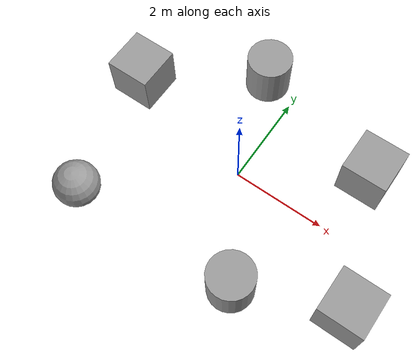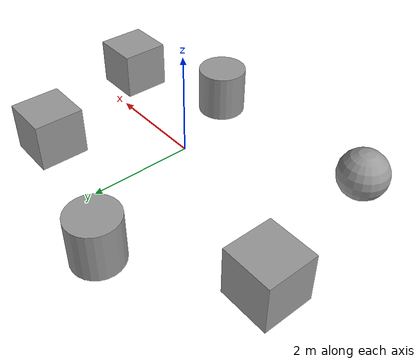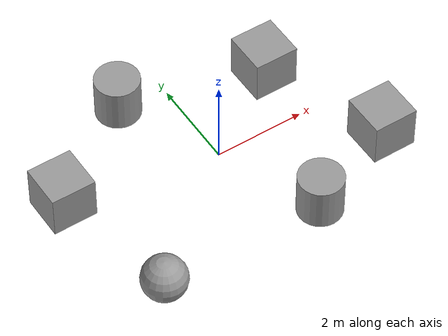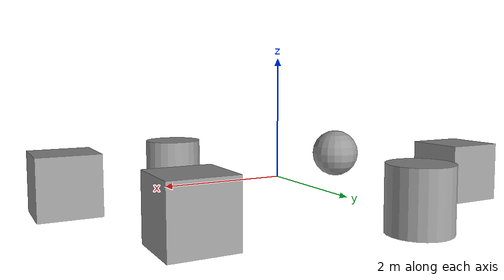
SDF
<?xml version='1.0'?>
<sdf version='1.7'>
  <model name='model'>
    <link name='link_0'>
      <inertial>
        <mass>1</mass>
        <inertia>
          <ixx>0.145833</ixx>
          <ixy>0</ixy>
          <ixz>0</ixz>
          <iyy>0.145833</iyy>
          <iyz>0</iyz>
          <izz>0.125</izz>
        </inertia>
      </inertial>
      <pose>-0.878702 2.53613 0 0 -0 0</pose>
      <visual name='visual'>
        <pose>0 0 0 0 -0 0</pose>
        <geometry>
          <cylinder>
            <radius>0.5</radius>
            <length>1</length>
          </cylinder>
        </geometry>
        <material>
          <lighting>1</lighting>
          <script>
            <uri>file://media/materials/scripts/gazebo.material</uri>
            <name>Gazebo/Grey</name>
          </script>
          <shader type='pixel'/>
        </material>
        <transparency>0</transparency>
        <cast_shadows>1</cast_shadows>
      </visual>
      <collision name='collision'>
        <laser_retro>0</laser_retro>
        <max_contacts>10</max_contacts>
        <pose>0 0 0 0 -0 0</pose>
        <geometry>
          <cylinder>
            <radius>0.5</radius>
            <length>1</length>
          </cylinder>
        </geometry>
        <surface>
          <friction>
            <ode>
              <mu>1</mu>
              <mu2>1</mu2>
              <fdir1>0 0 0</fdir1>
              <slip1>0</slip1>
              <slip2>0</slip2>
            </ode>
            <torsional>
              <coefficient>1</coefficient>
              <patch_radius>0</patch_radius>
              <surface_radius>0</surface_radius>
              <use_patch_radius>1</use_patch_radius>
              <ode>
                <slip>0</slip>
              </ode>
            </torsional>
          </friction>
          <bounce>
            <restitution_coefficient>0</restitution_coefficient>
            <threshold>1e+06</threshold>
          </bounce>
          <contact>
            <collide_without_contact>0</collide_without_contact>
            <collide_without_contact_bitmask>1</collide_without_contact_bitmask>
            <collide_bitmask>1</collide_bitmask>
            <ode>
              <soft_cfm>0</soft_cfm>
              <soft_erp>0.2</soft_erp>
              <kp>1e+13</kp>
              <kd>1</kd>
              <max_vel>0.01</max_vel>
              <min_depth>0</min_depth>
            </ode>
            <bullet>
              <split_impulse>1</split_impulse>
              <split_impulse_penetration_threshold>-0.01</split_impulse_penetration_threshold>
              <soft_cfm>0</soft_cfm>
              <soft_erp>0.2</soft_erp>
              <kp>1e+13</kp>
              <kd>1</kd>
            </bullet>
          </contact>
        </surface>
      </collision>
    </link>
    <link name='link_1'>
      <inertial>
        <mass>1</mass>
        <inertia>
          <ixx>0.166667</ixx>
          <ixy>0</ixy>
          <ixz>0</ixz>
          <iyy>0.166667</iyy>
          <iyz>0</iyz>
          <izz>0.166667</izz>
        </inertia>
      </inertial>
      <pose>3.31203 -1.09764 0 0 -0 0</pose>
      <visual name='visual'>
        <pose>0 0 0 0 -0 0</pose>
        <geometry>
          <box>
            <size>1 1 1</size>
          </box>
        </geometry>
        <material>
          <lighting>1</lighting>
          <script>
            <uri>file://media/materials/scripts/gazebo.material</uri>
            <name>Gazebo/Grey</name>
          </script>
          <shader type='pixel'/>
        </material>
        <transparency>0</transparency>
        <cast_shadows>1</cast_shadows>
      </visual>
      <collision name='collision'>
        <laser_retro>0</laser_retro>
        <max_contacts>10</max_contacts>
        <pose>0 0 0 0 -0 0</pose>
        <geometry>
          <box>
            <size>1 1 1</size>
          </box>
        </geometry>
        <surface>
          <friction>
            <ode>
              <mu>1</mu>
              <mu2>1</mu2>
              <fdir1>0 0 0</fdir1>
              <slip1>0</slip1>
              <slip2>0</slip2>
            </ode>
            <torsional>
              <coefficient>1</coefficient>
              <patch_radius>0</patch_radius>
              <surface_radius>0</surface_radius>
              <use_patch_radius>1</use_patch_radius>
              <ode>
                <slip>0</slip>
              </ode>
            </torsional>
          </friction>
          <bounce>
            <restitution_coefficient>0</restitution_coefficient>
            <threshold>1e+06</threshold>
          </bounce>
          <contact>
            <collide_without_contact>0</collide_without_contact>
            <collide_without_contact_bitmask>1</collide_without_contact_bitmask>
            <collide_bitmask>1</collide_bitmask>
            <ode>
              <soft_cfm>0</soft_cfm>
              <soft_erp>0.2</soft_erp>
              <kp>1e+13</kp>
              <kd>1</kd>
              <max_vel>0.01</max_vel>
              <min_depth>0</min_depth>
            </ode>
            <bullet>
              <split_impulse>1</split_impulse>
              <split_impulse_penetration_threshold>-0.01</split_impulse_penetration_threshold>
              <soft_cfm>0</soft_cfm>
              <soft_erp>0.2</soft_erp>
              <kp>1e+13</kp>
              <kd>1</kd>
            </bullet>
          </contact>
        </surface>
      </collision>
    </link>
    <link name='link_2'>
      <inertial>
        <mass>1</mass>
        <inertia>
          <ixx>0.166667</ixx>
          <ixy>0</ixy>
          <ixz>0</ixz>
          <iyy>0.166667</iyy>
          <iyz>0</iyz>
          <izz>0.166667</izz>
        </inertia>
      </inertial>
      <pose>2.22845 1.67856 0 0 -0 0</pose>
      <visual name='visual'>
        <pose>0 0 0 0 -0 0</pose>
        <geometry>
          <box>
            <size>1 1 1</size>
          </box>
        </geometry>
        <material>
          <lighting>1</lighting>
          <script>
            <uri>file://media/materials/scripts/gazebo.material</uri>
            <name>Gazebo/Grey</name>
          </script>
          <shader type='pixel'/>
        </material>
        <transparency>0</transparency>
        <cast_shadows>1</cast_shadows>
      </visual>
      <collision name='collision'>
        <laser_retro>0</laser_retro>
        <max_contacts>10</max_contacts>
        <pose>0 0 0 0 -0 0</pose>
        <geometry>
          <box>
            <size>1 1 1</size>
          </box>
        </geometry>
        <surface>
          <friction>
            <ode>
              <mu>1</mu>
              <mu2>1</mu2>
              <fdir1>0 0 0</fdir1>
              <slip1>0</slip1>
              <slip2>0</slip2>
            </ode>
            <torsional>
              <coefficient>1</coefficient>
              <patch_radius>0</patch_radius>
              <surface_radius>0</surface_radius>
              <use_patch_radius>1</use_patch_radius>
              <ode>
                <slip>0</slip>
              </ode>
            </torsional>
          </friction>
          <bounce>
            <restitution_coefficient>0</restitution_coefficient>
            <threshold>1e+06</threshold>
          </bounce>
          <contact>
            <collide_without_contact>0</collide_without_contact>
            <collide_without_contact_bitmask>1</collide_without_contact_bitmask>
            <collide_bitmask>1</collide_bitmask>
            <ode>
              <soft_cfm>0</soft_cfm>
              <soft_erp>0.2</soft_erp>
              <kp>1e+13</kp>
              <kd>1</kd>
              <max_vel>0.01</max_vel>
              <min_depth>0</min_depth>
            </ode>
            <bullet>
              <split_impulse>1</split_impulse>
              <split_impulse_penetration_threshold>-0.01</split_impulse_penetration_threshold>
              <soft_cfm>0</soft_cfm>
              <soft_erp>0.2</soft_erp>
              <kp>1e+13</kp>
              <kd>1</kd>
            </bullet>
          </contact>
        </surface>
      </collision>
    </link>
    <link name='link_3'>
      <inertial>
        <mass>1</mass>
        <inertia>
          <ixx>0.1</ixx>
          <ixy>0</ixy>
          <ixz>0</ixz>
          <iyy>0.1</iyy>
          <iyz>0</iyz>
          <izz>0.1</izz>
        </inertia>
      </inertial>
      <pose>-2.63646 -2.0658 0 0 -0 0</pose>
      <visual name='visual'>
        <pose>0 0 0 0 -0 0</pose>
        <geometry>
          <sphere>
            <radius>0.5</radius>
          </sphere>
        </geometry>
        <material>
          <lighting>1</lighting>
          <script>
            <uri>file://media/materials/scripts/gazebo.material</uri>
            <name>Gazebo/Grey</name>
          </script>
          <shader type='pixel'/>
        </material>
        <transparency>0</transparency>
        <cast_shadows>1</cast_shadows>
      </visual>
      <collision name='collision'>
        <laser_retro>0</laser_retro>
        <max_contacts>10</max_contacts>
        <pose>0 0 0 0 -0 0</pose>
        <geometry>
          <sphere>
            <radius>0.5</radius>
          </sphere>
        </geometry>
        <surface>
          <friction>
            <ode>
              <mu>1</mu>
              <mu2>1</mu2>
              <fdir1>0 0 0</fdir1>
              <slip1>0</slip1>
              <slip2>0</slip2>
            </ode>
            <torsional>
              <coefficient>1</coefficient>
              <patch_radius>0</patch_radius>
              <surface_radius>0</surface_radius>
              <use_patch_radius>1</use_patch_radius>
              <ode>
                <slip>0</slip>
              </ode>
            </torsional>
          </friction>
          <bounce>
            <restitution_coefficient>0</restitution_coefficient>
            <threshold>1e+06</threshold>
          </bounce>
          <contact>
            <collide_without_contact>0</collide_without_contact>
            <collide_without_contact_bitmask>1</collide_without_contact_bitmask>
            <collide_bitmask>1</collide_bitmask>
            <ode>
              <soft_cfm>0</soft_cfm>
              <soft_erp>0.2</soft_erp>
              <kp>1e+13</kp>
              <kd>1</kd>
              <max_vel>0.01</max_vel>
              <min_depth>0</min_depth>
            </ode>
            <bullet>
              <split_impulse>1</split_impulse>
              <split_impulse_penetration_threshold>-0.01</split_impulse_penetration_threshold>
              <soft_cfm>0</soft_cfm>
              <soft_erp>0.2</soft_erp>
              <kp>1e+13</kp>
              <kd>1</kd>
            </bullet>
          </contact>
        </surface>
      </collision>
    </link>
    <link name='link_4'>
      <inertial>
        <mass>1</mass>
        <inertia>
          <ixx>0.145833</ixx>
          <ixy>0</ixy>
          <ixz>0</ixz>
          <iyy>0.145833</iyy>
          <iyz>0</iyz>
          <izz>0.125</izz>
        </inertia>
      </inertial>
      <pose>1.17612 -1.96277 0 0 -0 0</pose>
      <visual name='visual'>
        <pose>0 0 0 0 -0 0</pose>
        <geometry>
          <cylinder>
            <radius>0.5</radius>
            <length>1</length>
          </cylinder>
        </geometry>
        <material>
          <lighting>1</lighting>
          <script>
            <uri>file://media/materials/scripts/gazebo.material</uri>
            <name>Gazebo/Grey</name>
          </script>
          <shader type='pixel'/>
        </material>
        <transparency>0</transparency>
        <cast_shadows>1</cast_shadows>
      </visual>
      <collision name='collision'>
        <laser_retro>0</laser_retro>
        <max_contacts>10</max_contacts>
        <pose>0 0 0 0 -0 0</pose>
        <geometry>
          <cylinder>
            <radius>0.5</radius>
            <length>1</length>
          </cylinder>
        </geometry>
        <surface>
          <friction>
            <ode>
              <mu>1</mu>
              <mu2>1</mu2>
              <fdir1>0 0 0</fdir1>
              <slip1>0</slip1>
              <slip2>0</slip2>
            </ode>
            <torsional>
              <coefficient>1</coefficient>
              <patch_radius>0</patch_radius>
              <surface_radius>0</surface_radius>
              <use_patch_radius>1</use_patch_radius>
              <ode>
                <slip>0</slip>
              </ode>
            </torsional>
          </friction>
          <bounce>
            <restitution_coefficient>0</restitution_coefficient>
            <threshold>1e+06</threshold>
          </bounce>
          <contact>
            <collide_without_contact>0</collide_without_contact>
            <collide_without_contact_bitmask>1</collide_without_contact_bitmask>
            <collide_bitmask>1</collide_bitmask>
            <ode>
              <soft_cfm>0</soft_cfm>
              <soft_erp>0.2</soft_erp>
              <kp>1e+13</kp>
              <kd>1</kd>
              <max_vel>0.01</max_vel>
              <min_depth>0</min_depth>
            </ode>
            <bullet>
              <split_impulse>1</split_impulse>
              <split_impulse_penetration_threshold>-0.01</split_impulse_penetration_threshold>
              <soft_cfm>0</soft_cfm>
              <soft_erp>0.2</soft_erp>
              <kp>1e+13</kp>
              <kd>1</kd>
            </bullet>
          </contact>
        </surface>
      </collision>
    </link>
    <link name='link_5'>
      <inertial>
        <mass>1</mass>
        <inertia>
          <ixx>0.166667</ixx>
          <ixy>0</ixy>
          <ixz>0</ixz>
          <iyy>0.166667</iyy>
          <iyz>0</iyz>
          <izz>0.166667</izz>
        </inertia>
      </inertial>
      <pose>-3.20143 0.911511 0 0 -0 0</pose>
      <visual name='visual'>
        <pose>0 0 0 0 -0 0</pose>
        <geometry>
          <box>
            <size>1 1 1</size>
          </box>
        </geometry>
        <material>
          <lighting>1</lighting>
          <script>
            <uri>file://media/materials/scripts/gazebo.material</uri>
            <name>Gazebo/Grey</name>
          </script>
          <shader type='pixel'/>
        </material>
        <transparency>0</transparency>
        <cast_shadows>1</cast_shadows>
      </visual>
      <collision name='collision'>
        <laser_retro>0</laser_retro>
        <max_contacts>10</max_contacts>
        <pose>0 0 0 0 -0 0</pose>
        <geometry>
          <box>
            <size>1 1 1</size>
          </box>
        </geometry>
        <surface>
          <friction>
            <ode>
              <mu>1</mu>
              <mu2>1</mu2>
              <fdir1>0 0 0</fdir1>
              <slip1>0</slip1>
              <slip2>0</slip2>
            </ode>
            <torsional>
              <coefficient>1</coefficient>
              <patch_radius>0</patch_radius>
              <surface_radius>0</surface_radius>
              <use_patch_radius>1</use_patch_radius>
              <ode>
                <slip>0</slip>
              </ode>
            </torsional>
          </friction>
          <bounce>
            <restitution_coefficient>0</restitution_coefficient>
            <threshold>1e+06</threshold>
          </bounce>
          <contact>
            <collide_without_contact>0</collide_without_contact>
            <collide_without_contact_bitmask>1</collide_without_contact_bitmask>
            <collide_bitmask>1</collide_bitmask>
            <ode>
              <soft_cfm>0</soft_cfm>
              <soft_erp>0.2</soft_erp>
              <kp>1e+13</kp>
              <kd>1</kd>
              <max_vel>0.01</max_vel>
              <min_depth>0</min_depth>
            </ode>
            <bullet>
              <split_impulse>1</split_impulse>
              <split_impulse_penetration_threshold>-0.01</split_impulse_penetration_threshold>
              <soft_cfm>0</soft_cfm>
              <soft_erp>0.2</soft_erp>
              <kp>1e+13</kp>
              <kd>1</kd>
            </bullet>
          </contact>
        </surface>
      </collision>
    </link>
    <static>0</static>
    <allow_auto_disable>1</allow_auto_disable>
  </model>
</sdf>
